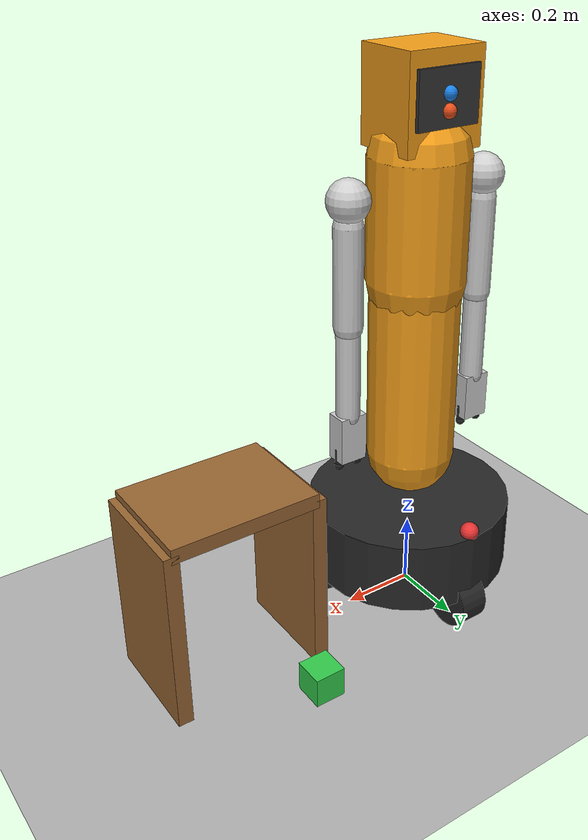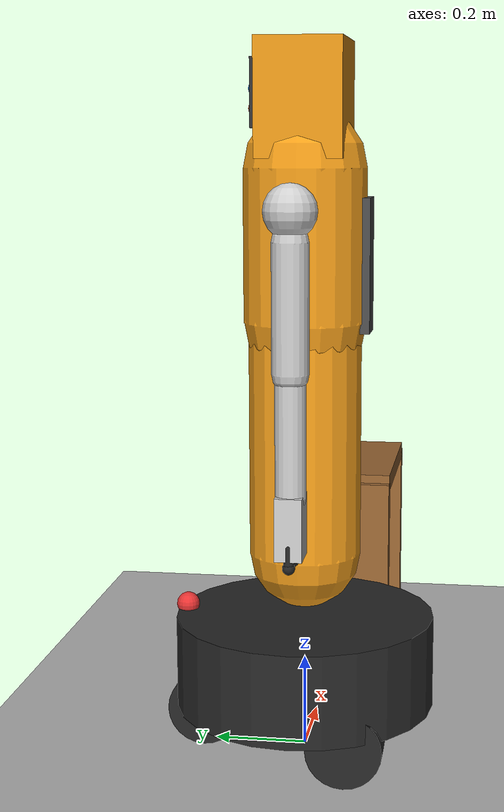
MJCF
<!-- Default scene: VNR-WH1 on flat floor with a manipulation target object -->
<mujoco model="vnr_wh1_scene">

  <include file="../vnr_wh1.xml"/>

  <worldbody>
    <!-- A simple box for pick-and-place testing -->
    <body name="target_box" pos="0.5 0.3 0.10">
      <freejoint/>
      <geom type="box" size="0.04 0.04 0.04" mass="0.3"
            rgba="0.2 0.8 0.3 1" condim="4"/>
    </body>

    <!-- Shelf (fixed) -->
    <body name="shelf" pos="0.6 0 0.50">
      <geom type="box" size="0.20 0.15 0.02" mass="0" rgba="0.6 0.4 0.2 1"/>
      <geom type="box" size="0.02 0.15 0.25" pos="-0.20 0 -0.25" mass="0" rgba="0.6 0.4 0.2 1"/>
      <geom type="box" size="0.02 0.15 0.25" pos=" 0.20 0 -0.25" mass="0" rgba="0.6 0.4 0.2 1"/>
    </body>
  </worldbody>

</mujoco>

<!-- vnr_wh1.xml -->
<mujoco model="vnr_wh1">

  <compiler angle="radian" inertiafromgeom="auto"/>

  <option gravity="0 0 -9.81" timestep="0.002" integrator="RK4"/>

  <!-- DEFAULTS                                                         -->
  <default>
    <geom condim="4" friction="1.0 0.005 0.0001" solimp="0.9 0.95 0.001" solref="0.02 1"/>

    <default class="arm">
      <joint type="hinge" damping="1.5" armature="0.01" limited="true"/>
      <position kp="100" kv="10"/>
    </default>

    <default class="wheel">
      <joint type="hinge" damping="0.3" armature="0.005" limited="false"/>
      <velocity gear="1" ctrlrange="-15 15"/>
    </default>

    <default class="head">
      <joint type="hinge" damping="0.5" armature="0.005" limited="true"/>
      <position kp="50" kv="5"/>
    </default>

    <default class="gripper">
      <joint type="slide" damping="10" armature="0.002" limited="true" range="0 0.045"/>
      <position kp="300" kv="20" ctrlrange="0 0.045"/>
    </default>
  </default>

  <!-- ASSETS                                                           -->
  <asset>
    <texture name="grid" type="2d" builtin="checker" rgb1="0.8 0.8 0.8" rgb2="0.6 0.6 0.6"
             width="512" height="512"/>
    <material name="floor_mat" texture="grid" texrepeat="4 4" reflectance="0.2"/>
    <material name="body_mat" rgba="0.95 0.62 0.10 1"/>   <!-- VnRobo amber -->
    <material name="dark_mat" rgba="0.15 0.15 0.15 1"/>   <!-- chassis dark -->
    <material name="grey_mat" rgba="0.80 0.80 0.80 1"/>   <!-- links grey -->
  </asset>

  <!-- WORLD                                                            -->
  <worldbody>
    <light name="sky" pos="0 0 5" dir="0 0 -1" diffuse="0.8 0.8 0.8" specular="0.3 0.3 0.3" castshadow="false"/>
    <light name="fill" pos="2 -2 3" dir="-1 1 -1" diffuse="0.3 0.3 0.4" specular="0 0 0" castshadow="false"/>
    <geom name="floor" type="plane" size="8 8 0.1" material="floor_mat" condim="3"/>

    <!-- ======================== BASE PLATFORM ======================== -->
    <!-- Initial height: wheel radius (0.08) + base half-height (0.10) = 0.18 -->
    <body name="base" pos="0 0 0.20">
      <freejoint name="root"/>
      <geom name="base_geom" type="cylinder" size="0.28 0.10" material="dark_mat" mass="22"/>
      <!-- Front direction indicator (red dot) -->
      <site name="base_front" pos="0 0.26 0.11" size="0.025" rgba="0.9 0.2 0.2 1"/>
      <site name="imu" pos="0 0 0" size="0.01"/>

      <!-- ==================== WHEELS (3× omni) ==================== -->
      <!-- Front wheel — at (0, +0.22), rolls around X -->
      <body name="wheel_f" pos="0 0.22 -0.12">
        <joint name="wheel_f" class="wheel" axis="1 0 0"/>
        <geom name="wheel_f_geom" type="cylinder" size="0.08 0.04" euler="0 1.5708 0"
              material="dark_mat" mass="0.8" friction="2 0.01 0.001"/>
      </body>

      <!-- Back-left wheel — at (-0.19, -0.11), rolls around (-0.5, 0.866, 0) -->
      <body name="wheel_bl" pos="-0.19 -0.11 -0.12">
        <joint name="wheel_bl" class="wheel" axis="-0.5 0.866 0"/>
        <geom name="wheel_bl_geom" type="cylinder" size="0.08 0.04" euler="0 1.5708 0"
              material="dark_mat" mass="0.8" friction="2 0.01 0.001"/>
      </body>

      <!-- Back-right wheel — at (+0.19, -0.11), rolls around (0.5, 0.866, 0) -->
      <body name="wheel_br" pos="0.19 -0.11 -0.12">
        <joint name="wheel_br" class="wheel" axis="0.5 0.866 0"/>
        <geom name="wheel_br_geom" type="cylinder" size="0.08 0.04" euler="0 1.5708 0"
              material="dark_mat" mass="0.8" friction="2 0.01 0.001"/>
      </body>

      <!-- ==================== TORSO ==================== -->
      <!-- Torso base at top of platform: z = +0.10 (half-height of base) + 0.12 (offset) -->
      <body name="torso" pos="0 0 0.24">
        <geom name="torso_geom" type="capsule" fromto="0 0 0 0 0 0.48"
              size="0.12" material="body_mat" mass="14"/>

        <!-- ==================== CHEST ==================== -->
        <body name="chest" pos="0 0 0.50">
          <geom name="chest_geom" type="capsule" fromto="0 0 0 0 0 0.32"
                size="0.13" material="body_mat" mass="8"/>

          <!-- Spine detail strip -->
          <geom name="spine_detail" type="box" size="0.04 0.01 0.14"
                pos="0 -0.13 0.12" rgba="0.3 0.3 0.3 1" mass="0"/>

          <!-- ==================== HEAD ==================== -->
          <body name="head_pan_link" pos="0 0 0.40">
            <joint name="head_pan" class="head" axis="0 0 1" range="-1.57 1.57"/>
            <geom type="cylinder" size="0.04 0.04" material="grey_mat" mass="0.2"/>

            <body name="head" pos="0 0 0.06">
              <joint name="head_tilt" class="head" axis="0 1 0" range="-0.52 0.52"/>
              <geom name="head_geom" type="box" size="0.11 0.09 0.12"
                    material="body_mat" mass="1.5"/>
              <!-- Face plate -->
              <geom name="face_plate" type="box" size="0.09 0.01 0.07"
                    pos="0 0.09 0.01" rgba="0.2 0.2 0.2 1" mass="0"/>
              <!-- Camera sites -->
              <site name="cam_rgb"   pos="0 0.10  0.02" size="0.018" rgba="0.1 0.5 0.9 1"/>
              <site name="cam_depth" pos="0 0.10 -0.02" size="0.018" rgba="0.9 0.3 0.1 1"/>
            </body>
          </body>

          <!-- ========================= LEFT ARM ========================= -->
          <!-- Shoulder ball joint (shoulder pitch) at upper-left of chest -->
          <body name="l_shoulder" pos="-0.21 0 0.24">
            <joint name="l_sp" class="arm" axis="0 1 0" range="-3.14 1.57"/>
            <geom type="sphere" size="0.055" material="grey_mat" mass="0.4"/>

            <!-- Upper arm — shoulder roll -->
            <body name="l_uarm" pos="0 0 -0.06">
              <joint name="l_sr" class="arm" axis="1 0 0" range="-1.57 1.57"/>
              <geom name="l_uarm_geom" type="capsule" fromto="0 0 0 0 0 -0.26"
                    size="0.038" material="grey_mat" mass="1.4"/>

              <!-- Elbow yaw (twist) -->
              <body name="l_elbow_link" pos="0 0 -0.26">
                <joint name="l_sy" class="arm" axis="0 0 1" range="-1.57 1.57"/>
                <geom type="sphere" size="0.025" mass="0.15" rgba="0.7 0.7 0.7 1"/>

                <!-- Forearm — elbow pitch -->
                <body name="l_farm" pos="0 0 -0.02">
                  <joint name="l_ep" class="arm" axis="0 1 0" range="-2.36 0"/>
                  <geom name="l_farm_geom" type="capsule" fromto="0 0 0 0 0 -0.23"
                        size="0.032" material="grey_mat" mass="1.1"/>

                  <!-- Wrist pitch -->
                  <body name="l_wrist_link" pos="0 0 -0.23">
                    <joint name="l_wp" class="arm" axis="0 1 0" range="-1.57 1.57"/>
                    <geom type="sphere" size="0.022" mass="0.10" rgba="0.7 0.7 0.7 1"/>

                    <!-- Hand — wrist roll -->
                    <body name="l_hand" pos="0 0 -0.02">
                      <joint name="l_wr" class="arm" axis="0 0 1" range="-1.57 1.57"/>
                      <geom name="l_hand_geom" type="box" size="0.038 0.028 0.065"
                            pos="0 0 -0.04" material="grey_mat" mass="0.4"/>
                      <site name="l_tcp" pos="0 0 -0.10" size="0.01" rgba="0 1 0 1"/>

                      <!-- Left gripper — 2 fingers slide along ±X -->
                      <body name="l_fl" pos="-0.028 0 -0.075">
                        <joint name="l_gl" class="gripper" axis="1 0 0"/>
                        <geom type="capsule" fromto="0 0 0 0 0 -0.045"
                              size="0.011" material="dark_mat" mass="0.07"/>
                        <!-- Finger tip -->
                        <geom type="sphere" size="0.013" pos="0 0 -0.045"
                              material="dark_mat" mass="0.01"/>
                      </body>
                      <body name="l_fr" pos="0.028 0 -0.075">
                        <joint name="l_gr" class="gripper" axis="-1 0 0"/>
                        <geom type="capsule" fromto="0 0 0 0 0 -0.045"
                              size="0.011" material="dark_mat" mass="0.07"/>
                        <geom type="sphere" size="0.013" pos="0 0 -0.045"
                              material="dark_mat" mass="0.01"/>
                      </body>
                    </body>
                  </body>
                </body>
              </body>
            </body>
          </body>

          <!-- ========================= RIGHT ARM (mirror) ========================= -->
          <body name="r_shoulder" pos="0.21 0 0.24">
            <joint name="r_sp" class="arm" axis="0 1 0" range="-3.14 1.57"/>
            <geom type="sphere" size="0.055" material="grey_mat" mass="0.4"/>

            <body name="r_uarm" pos="0 0 -0.06">
              <joint name="r_sr" class="arm" axis="1 0 0" range="-1.57 1.57"/>
              <geom name="r_uarm_geom" type="capsule" fromto="0 0 0 0 0 -0.26"
                    size="0.038" material="grey_mat" mass="1.4"/>

              <body name="r_elbow_link" pos="0 0 -0.26">
                <joint name="r_sy" class="arm" axis="0 0 1" range="-1.57 1.57"/>
                <geom type="sphere" size="0.025" mass="0.15" rgba="0.7 0.7 0.7 1"/>

                <body name="r_farm" pos="0 0 -0.02">
                  <joint name="r_ep" class="arm" axis="0 1 0" range="0 2.36"/>
                  <geom name="r_farm_geom" type="capsule" fromto="0 0 0 0 0 -0.23"
                        size="0.032" material="grey_mat" mass="1.1"/>

                  <body name="r_wrist_link" pos="0 0 -0.23">
                    <joint name="r_wp" class="arm" axis="0 1 0" range="-1.57 1.57"/>
                    <geom type="sphere" size="0.022" mass="0.10" rgba="0.7 0.7 0.7 1"/>

                    <body name="r_hand" pos="0 0 -0.02">
                      <joint name="r_wr" class="arm" axis="0 0 1" range="-1.57 1.57"/>
                      <geom name="r_hand_geom" type="box" size="0.038 0.028 0.065"
                            pos="0 0 -0.04" material="grey_mat" mass="0.4"/>
                      <site name="r_tcp" pos="0 0 -0.10" size="0.01" rgba="0 1 0 1"/>

                      <body name="r_fl" pos="-0.028 0 -0.075">
                        <joint name="r_gl" class="gripper" axis="1 0 0"/>
                        <geom type="capsule" fromto="0 0 0 0 0 -0.045"
                              size="0.011" material="dark_mat" mass="0.07"/>
                        <geom type="sphere" size="0.013" pos="0 0 -0.045"
                              material="dark_mat" mass="0.01"/>
                      </body>
                      <body name="r_fr" pos="0.028 0 -0.075">
                        <joint name="r_gr" class="gripper" axis="-1 0 0"/>
                        <geom type="capsule" fromto="0 0 0 0 0 -0.045"
                              size="0.011" material="dark_mat" mass="0.07"/>
                        <geom type="sphere" size="0.013" pos="0 0 -0.045"
                              material="dark_mat" mass="0.01"/>
                      </body>
                    </body>
                  </body>
                </body>
              </body>
            </body>
          </body>

        </body> <!-- chest -->
      </body> <!-- torso -->
    </body> <!-- base -->
  </worldbody>

  <!-- EQUALITY CONSTRAINTS (coupled gripper fingers)                  -->
  <equality>
    <!-- Left gripper: both fingers open/close symmetrically -->
    <joint name="l_gripper_couple" joint1="l_gl" joint2="l_gr" polycoef="0 1 0 0 0"/>
    <!-- Right gripper -->
    <joint name="r_gripper_couple" joint1="r_gl" joint2="r_gr" polycoef="0 1 0 0 0"/>
  </equality>

  <!-- ACTUATORS                                                        -->
  <actuator>
    <!-- === WHEELS: velocity control (rad/s) === -->
    <velocity name="wheel_f"  joint="wheel_f"  class="wheel"/>
    <velocity name="wheel_bl" joint="wheel_bl" class="wheel"/>
    <velocity name="wheel_br" joint="wheel_br" class="wheel"/>

    <!-- === HEAD: position control (rad) === -->
    <position name="head_pan"  joint="head_pan"  class="head" ctrlrange="-1.57 1.57"/>
    <position name="head_tilt" joint="head_tilt" class="head" ctrlrange="-0.52 0.52"/>

    <!-- === LEFT ARM: position control (rad) === -->
    <position name="l_sp" joint="l_sp" class="arm" ctrlrange="-3.14 1.57"/>
    <position name="l_sr" joint="l_sr" class="arm" ctrlrange="-1.57 1.57"/>
    <position name="l_sy" joint="l_sy" class="arm" ctrlrange="-1.57 1.57"/>
    <position name="l_ep" joint="l_ep" class="arm" ctrlrange="-2.36 0"/>
    <position name="l_wp" joint="l_wp" class="arm" ctrlrange="-1.57 1.57"/>
    <position name="l_wr" joint="l_wr" class="arm" ctrlrange="-1.57 1.57"/>
    <!-- Single actuator drives left finger; equality couples the right finger -->
    <position name="l_grip" joint="l_gl" class="gripper"/>

    <!-- === RIGHT ARM: position control (rad) === -->
    <position name="r_sp" joint="r_sp" class="arm" ctrlrange="-3.14 1.57"/>
    <position name="r_sr" joint="r_sr" class="arm" ctrlrange="-1.57 1.57"/>
    <position name="r_sy" joint="r_sy" class="arm" ctrlrange="-1.57 1.57"/>
    <position name="r_ep" joint="r_ep" class="arm" ctrlrange="0 2.36"/>
    <position name="r_wp" joint="r_wp" class="arm" ctrlrange="-1.57 1.57"/>
    <position name="r_wr" joint="r_wr" class="arm" ctrlrange="-1.57 1.57"/>
    <position name="r_grip" joint="r_gl" class="gripper"/>
  </actuator>

  <!-- SENSORS                                                          -->
  <sensor>
    <!-- IMU (base) -->
    <accelerometer name="imu_accel" site="imu"/>
    <gyro          name="imu_gyro"  site="imu"/>

    <!-- Base kinematics (for RL observations) -->
    <framepos    name="base_pos"    objtype="body" objname="base"/>
    <framequat   name="base_quat"   objtype="body" objname="base"/>
    <framelinvel name="base_linvel" objtype="body" objname="base"/>
    <frameangvel name="base_angvel" objtype="body" objname="base"/>

    <!-- Tool-center-point positions (for manipulation tasks) -->
    <framepos name="l_tcp_pos" objtype="site" objname="l_tcp"/>
    <framepos name="r_tcp_pos" objtype="site" objname="r_tcp"/>

    <!-- Camera transforms (for vision pipeline) -->
    <framepos  name="cam_rgb_pos"  objtype="site" objname="cam_rgb"/>
    <framequat name="cam_rgb_quat" objtype="site" objname="cam_rgb"/>
  </sensor>

</mujoco>
